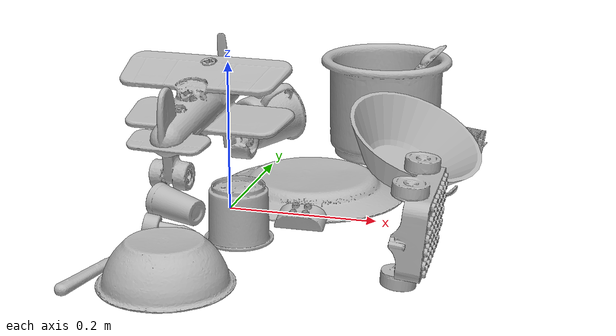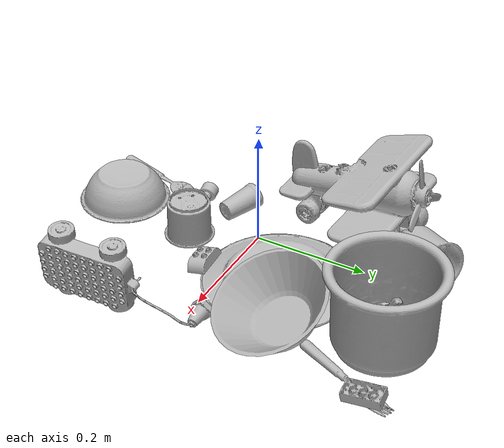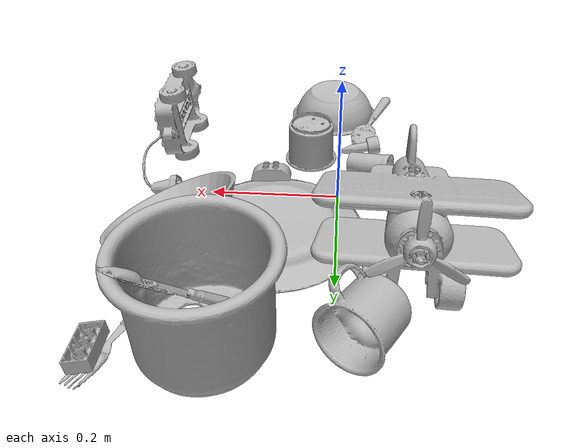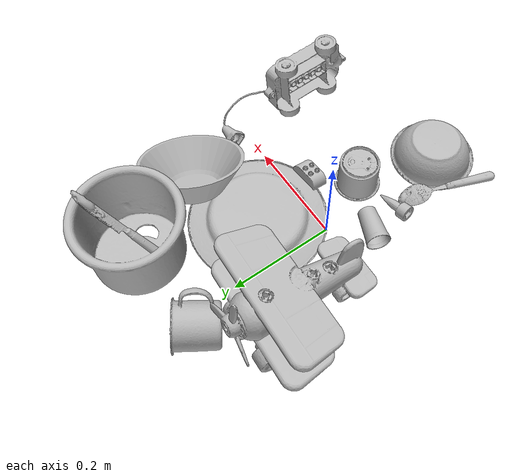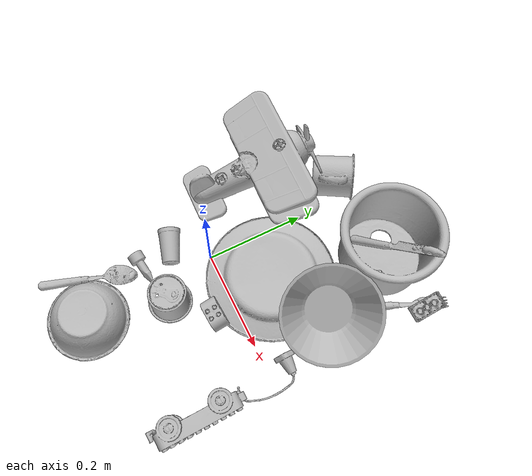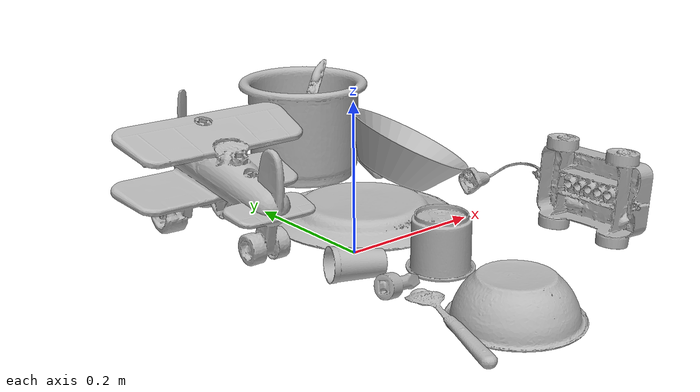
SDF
<sdf version="1.4">
  <world name="default">
    <light name="light1" type="point">
      <pose>0 0 1 0 0 0</pose>
      <diffuse>3 3 3 1</diffuse>
      <specular>3 3 3 1</specular>
    </light>
    <light name="light2" type="point">
      <pose>0 0.5 2 0 0 0</pose>
      <diffuse>1 1 1 1</diffuse>
      <specular>1 1 1 1</specular>
    </light>
    <light name="light3" type="point">
      <pose>0 0.5 2 0 0 0</pose>
      <diffuse>3 3 3 1</diffuse>
      <specular>3 3 3 1</specular>
    </light>
    <scene>
      <ambient>0.7 0.7 0.7</ambient>
    </scene>
    <model name="plate1">
      <link name="link_plate1">
        <collision name="default">
          <geometry>
            <mesh>
              <uri>model://plate/collision_meshes/collision.obj</uri>
              <scale>1.0 1.0 1.0</scale>
            </mesh>
          </geometry>
          <surface>
            <friction>
              <ode>
                <mu>0.5</mu>
                <mu2>0.5</mu2>
              </ode>
            </friction>
          <contact>
        <ode>
            <max_vel>0</max_vel>
            <min_depth>0.0001</min_depth>
            <kp>1e8</kp>
        </ode>
    </contact></surface>
        </collision>
        <visual name="default">
          <geometry>
            <mesh>
              <uri>model://plate/visual_meshes/visual.dae</uri>
              <scale>1.0 1.0 1.0</scale>
            </mesh>
          </geometry>
        </visual>
        <inertial>
          <mass>0.22833794355392456</mass>
          <pose>-0.000604461005423218 0.00027825840516015887 -0.0010561991948634386 0.0022188074693480237 -0.003225470002654536 0.4526028307495764</pose>
          <inertia>
            <ixx>0.0010681693</ixx>
            <iyy>0.0010579526</iyy>
            <izz>0.0020891798</izz>
            <ixy>0</ixy>
            <ixz>0</ixz>
            <iyz>0</iyz>
          </inertia>
        </inertial>
      </link>
      <pose>0.09066520631313324 0.0900031253695488 0.013448681682348251 3.1414220299414635 -0.003164424271083205 0.5305421033777145</pose>
    </model>
    <model name="cup1">
      <link name="link_cup1">
        <collision name="default">
          <geometry>
            <mesh>
              <uri>model://i_cups/collision_meshes/collision.obj</uri>
              <scale>2.0 2.0 2.0</scale>
            </mesh>
          </geometry>
          <surface>
            <friction>
              <ode>
                <mu>0.5</mu>
                <mu2>0.5</mu2>
              </ode>
            </friction>
          <contact>
        <ode>
            <max_vel>0</max_vel>
            <min_depth>0.0001</min_depth>
            <kp>1e8</kp>
        </ode>
    </contact></surface>
        </collision>
        <visual name="default">
          <geometry>
            <mesh>
              <uri>model://i_cups/visual_meshes/visual.dae</uri>
              <scale>2.0 2.0 2.0</scale>
            </mesh>
          </geometry>
        </visual>
        <inertial>
          <mass>0.4681873917579651</mass>
          <pose>0.00022480281768366694 0.00033594679553061724 -0.001715805265121162 -0.028982833374769763 -0.039873302367341296 -0.3459182567321849</pose>
          <inertia>
            <ixx>0.0025928493</ixx>
            <iyy>0.0026156942</iyy>
            <izz>0.0028979292</izz>
            <ixy>0</ixy>
            <ixz>0</ixz>
            <iyz>0</iyz>
          </inertia>
        </inertial>
      </link>
      <pose>0.1492079496383667 0.30291181802749634 0.07555001974105835 0.002103400250610348 -0.0062149342438636256 2.0979642698935894</pose>
    </model>
    <model name="silverware1">
      <link name="link_silverware1">
        <collision name="default">
          <geometry>
            <mesh>
              <uri>model://fork/collision_meshes/collision.obj</uri>
              <scale>1.0 1.0 1.0</scale>
            </mesh>
          </geometry>
          <surface>
            <friction>
              <ode>
                <mu>0.5</mu>
                <mu2>0.5</mu2>
              </ode>
            </friction>
          <contact>
        <ode>
            <max_vel>0</max_vel>
            <min_depth>0.0001</min_depth>
            <kp>1e8</kp>
        </ode>
    </contact></surface>
        </collision>
        <visual name="default">
          <geometry>
            <mesh>
              <uri>model://fork/visual_meshes/visual.dae</uri>
              <scale>1.0 1.0 1.0</scale>
            </mesh>
          </geometry>
        </visual>
        <inertial>
          <mass>0.027571624144911766</mass>
          <pose>-0.02957003377377987 0.00046588233090005815 0.00032188609475269914 -0.013550958023284024 -0.010977835737993834 0.014453901364285019</pose>
          <inertia>
            <ixx>9.665413e-07</ixx>
            <iyy>7.198156e-05</iyy>
            <izz>7.24139e-05</izz>
            <ixy>0</ixy>
            <ixz>0</ixz>
            <iyz>0</iyz>
          </inertia>
        </inertial>
      </link>
      <pose>0.25192776322364807 0.2866322994232178 0.00522964121773839 0.010306250449879659 0.05082859112415028 1.1767912050793603</pose>
    </model>
    <model name="silverware2">
      <link name="link_silverware2">
        <collision name="default">
          <geometry>
            <mesh>
              <uri>model://spoon/collision_meshes/collision.obj</uri>
              <scale>1.0 1.0 1.0</scale>
            </mesh>
          </geometry>
          <surface>
            <friction>
              <ode>
                <mu>0.5</mu>
                <mu2>0.5</mu2>
              </ode>
            </friction>
          <contact>
        <ode>
            <max_vel>0</max_vel>
            <min_depth>0.0001</min_depth>
            <kp>1e8</kp>
        </ode>
    </contact></surface>
        </collision>
        <visual name="default">
          <geometry>
            <mesh>
              <uri>model://spoon/visual_meshes/visual.dae</uri>
              <scale>1.0 1.0 1.0</scale>
            </mesh>
          </geometry>
        </visual>
        <inertial>
          <mass>0.026229728013277054</mass>
          <pose>-0.005526318680495024 -0.001603417913429439 -0.0007271656068041921 0.03521671072465583 -0.039065837568760656 0.006150610113583586</pose>
          <inertia>
            <ixx>1.4589405e-06</ixx>
            <iyy>9.980327e-05</iyy>
            <izz>0.00010052276</izz>
            <ixy>0</ixy>
            <ixz>0</ixz>
            <iyz>0</iyz>
          </inertia>
        </inertial>
      </link>
      <pose>-0.060862794518470764 -0.2391916811466217 0.010196601040661335 3.0855067699565053 -0.06127502128071971 1.2587394110958292</pose>
    </model>
    <model name="silverware3">
      <link name="link_silverware3">
        <collision name="default">
          <geometry>
            <mesh>
              <uri>model://knife/collision_meshes/collision.obj</uri>
              <scale>1.0 1.0 1.0</scale>
            </mesh>
          </geometry>
          <surface>
            <friction>
              <ode>
                <mu>0.5</mu>
                <mu2>0.5</mu2>
              </ode>
            </friction>
          <contact>
        <ode>
            <max_vel>0</max_vel>
            <min_depth>0.0001</min_depth>
            <kp>1e8</kp>
        </ode>
    </contact></surface>
        </collision>
        <visual name="default">
          <geometry>
            <mesh>
              <uri>model://knife/visual_meshes/visual.dae</uri>
              <scale>1.0 1.0 1.0</scale>
            </mesh>
          </geometry>
        </visual>
        <inertial>
          <mass>0.02346421591937542</mass>
          <pose>-0.02378525584936142 0.0015275125624611974 5.062017953605391e-05 0.07305400797241687 0.017248417900584085 -0.007409820985288758</pose>
          <inertia>
            <ixx>6.6600956e-07</ixx>
            <iyy>9.0145724e-05</iyy>
            <izz>9.036023e-05</izz>
            <ixy>0</ixy>
            <ixz>0</ixz>
            <iyz>0</iyz>
          </inertia>
        </inertial>
      </link>
      <pose>0.1608782559633255 0.3119357228279114 0.09198188036680222 -3.049318244654359 -0.7190514369063744 0.5722957258160367</pose>
    </model>
    <model name="cup3">
      <link name="link_cup3">
        <collision name="default">
          <geometry>
            <mesh>
              <uri>model://g_cups/collision_meshes/collision.obj</uri>
              <scale>1.0 1.0 1.0</scale>
            </mesh>
          </geometry>
          <surface>
            <friction>
              <ode>
                <mu>0.5</mu>
                <mu2>0.5</mu2>
              </ode>
            </friction>
          <contact>
        <ode>
            <max_vel>0</max_vel>
            <min_depth>0.0001</min_depth>
            <kp>1e8</kp>
        </ode>
    </contact></surface>
        </collision>
        <visual name="default">
          <geometry>
            <mesh>
              <uri>model://g_cups/visual_meshes/visual.dae</uri>
              <scale>1.0 1.0 1.0</scale>
            </mesh>
          </geometry>
        </visual>
        <inertial>
          <mass>0.061065707355737686</mass>
          <pose>-0.0007946277037262917 -4.2064726585522294e-05 -0.002132938476279378 -0.21381528234109023 -0.31410608856426947 0.31118675593786127</pose>
          <inertia>
            <ixx>7.1277376e-05</ixx>
            <iyy>7.10349e-05</iyy>
            <izz>7.383109e-05</izz>
            <ixy>0</ixy>
            <ixz>0</ixz>
            <iyz>0</iyz>
          </inertia>
        </inertial>
      </link>
      <pose>0.048192042857408524 -0.10960168391466141 0.03711601346731186 3.1415926189012104 -8.311729887556487e-08 2.485915679381262</pose>
    </model>
    <model name="cup4">
      <link name="link_cup4">
        <collision name="default">
          <geometry>
            <mesh>
              <uri>model://mug/collision_meshes/collision.obj</uri>
              <scale>1.0 1.0 1.0</scale>
            </mesh>
          </geometry>
          <surface>
            <friction>
              <ode>
                <mu>0.5</mu>
                <mu2>0.5</mu2>
              </ode>
            </friction>
          <contact>
        <ode>
            <max_vel>0</max_vel>
            <min_depth>0.0001</min_depth>
            <kp>1e8</kp>
        </ode>
    </contact></surface>
        </collision>
        <visual name="default">
          <geometry>
            <mesh>
              <uri>model://mug/visual_meshes/visual.dae</uri>
              <scale>1.0 1.0 1.0</scale>
            </mesh>
          </geometry>
        </visual>
        <inertial>
          <mass>0.23807048797607422</mass>
          <pose>0.009571674279868603 0.0008143257582560182 -0.010947330854833126 -0.1298314387661624 0.08737745525079747 0.05507303490292968</pose>
          <inertia>
            <ixx>0.00023648023</ixx>
            <iyy>0.0002641344</iyy>
            <izz>0.00030547503</izz>
            <ixy>0</ixy>
            <ixz>0</ixz>
            <iyz>0</iyz>
          </inertia>
        </inertial>
      </link>
      <pose>-0.03049892745912075 0.2894350290298462 0.05317840725183487 1.4080694643341845 0.9911332027014434 2.453572474312153</pose>
    </model>
    <model name="cup5">
      <link name="link_cup5">
        <collision name="default">
          <geometry>
            <mesh>
              <uri>model://cup_small/collision_meshes/collision.obj</uri>
              <scale>1.0 1.0 1.0</scale>
            </mesh>
          </geometry>
          <surface>
            <friction>
              <ode>
                <mu>0.5</mu>
                <mu2>0.5</mu2>
              </ode>
            </friction>
          <contact>
        <ode>
            <max_vel>0</max_vel>
            <min_depth>0.0001</min_depth>
            <kp>1e8</kp>
        </ode>
    </contact></surface>
        </collision>
        <visual name="default">
          <geometry>
            <mesh>
              <uri>model://cup_small/visual_meshes/visual.dae</uri>
              <scale>1.0 1.0 1.0</scale>
            </mesh>
          </geometry>
        </visual>
        <inertial>
          <mass>0.034257128834724426</mass>
          <pose>0.00010482469951966777 -0.00033778377110138535 -0.01074282731860876 -0.011493012610900502 -0.015280351102743797 -0.5058271067899499</pose>
          <inertia>
            <ixx>2.0170073e-05</ixx>
            <iyy>2.0274121e-05</iyy>
            <izz>9.106847e-06</izz>
            <ixy>0</ixy>
            <ixz>0</ixz>
            <iyz>0</iyz>
          </inertia>
        </inertial>
      </link>
      <pose>-0.051147013902664185 -0.06526155769824982 0.02008192241191864 1.4143669433651354 0.9819604708391659 -2.0684971173037</pose>
    </model>
    <model name="bowl1">
      <link name="link_bowl1">
        <collision name="default">
          <geometry>
            <mesh>
              <uri>model://bowl/collision_meshes/collision.obj</uri>
              <scale>1.0 1.0 1.0</scale>
            </mesh>
          </geometry>
          <surface>
            <friction>
              <ode>
                <mu>0.5</mu>
                <mu2>0.5</mu2>
              </ode>
            </friction>
          <contact>
        <ode>
            <max_vel>0</max_vel>
            <min_depth>0.0001</min_depth>
            <kp>1e8</kp>
        </ode>
    </contact></surface>
        </collision>
        <visual name="default">
          <geometry>
            <mesh>
              <uri>model://bowl/visual_meshes/visual.dae</uri>
              <scale>1.0 1.0 1.0</scale>
            </mesh>
          </geometry>
        </visual>
        <inertial>
          <mass>0.06465846300125122</mass>
          <pose>0.0002044529392151162 -0.0010302059818059206 -0.0008042643894441426 -0.015764115524798613 0.014546769889283702 0.7140385686011532</pose>
          <inertia>
            <ixx>0.00014852564</ixx>
            <iyy>0.000145207</iyy>
            <izz>0.00024987117</izz>
            <ixy>0</ixy>
            <ixz>0</ixz>
            <iyz>0</iyz>
          </inertia>
        </inertial>
      </link>
      <pose>0.011589148081839085 -0.26771122217178345 0.027247317135334015 -3.1327275666769387 0.0006729669117114852 -2.8966530224980866</pose>
    </model>
    <model name="bowl2">
      <link name="link_bowl2">
        <collision name="default">
          <geometry>
            <mesh>
              <uri>model://bowl_a/collision_meshes/collision.obj</uri>
              <scale>1.0 1.0 1.0</scale>
            </mesh>
          </geometry>
          <surface>
            <friction>
              <ode>
                <mu>0.5</mu>
                <mu2>0.5</mu2>
              </ode>
            </friction>
          <contact>
        <ode>
            <max_vel>0</max_vel>
            <min_depth>0.0001</min_depth>
            <kp>1e8</kp>
        </ode>
    </contact></surface>
        </collision>
        <visual name="default">
          <geometry>
            <mesh>
              <uri>model://bowl_a/visual_meshes/visual.dae</uri>
              <scale>1.0 1.0 1.0</scale>
            </mesh>
          </geometry>
        </visual>
        <inertial>
          <mass>0.4949932396411896</mass>
          <pose>0.00027867621975019574 4.730939326691441e-05 -0.0013765293406322598 -0.0009805412802391578 -0.001093824733375575 -0.19123603072484788</pose>
          <inertia>
            <ixx>0.0014092687</ixx>
            <iyy>0.0014179207</iyy>
            <izz>0.0025064375</izz>
            <ixy>0</ixy>
            <ixz>0</ixz>
            <iyz>0</iyz>
          </inertia>
        </inertial>
      </link>
      <pose>0.21353767812252045 0.15005241334438324 0.05188160017132759 0.35113134231339427 0.31152343381051384 0.36513533168495116</pose>
    </model>
    <model name="toy1">
      <link name="link_toy1">
        <collision name="default">
          <geometry>
            <mesh>
              <uri>model://a_toy_airplane/collision_meshes/collision.obj</uri>
              <scale>1.0 1.0 1.0</scale>
            </mesh>
          </geometry>
          <surface>
            <friction>
              <ode>
                <mu>0.5</mu>
                <mu2>0.5</mu2>
              </ode>
            </friction>
          <contact>
        <ode>
            <max_vel>0</max_vel>
            <min_depth>0.0001</min_depth>
            <kp>1e8</kp>
        </ode>
    </contact></surface>
        </collision>
        <visual name="default">
          <geometry>
            <mesh>
              <uri>model://a_toy_airplane/visual_meshes/visual.dae</uri>
              <scale>1.0 1.0 1.0</scale>
            </mesh>
          </geometry>
        </visual>
        <inertial>
          <mass>1.5726872682571411</mass>
          <pose>0.025165090337395668 -0.003707318101078272 -0.0011962441494688392 -0.012016975653996446 -0.14663502644886817 0.00414906395026872</pose>
          <inertia>
            <ixx>0.0057111816</ixx>
            <iyy>0.008322349</iyy>
            <izz>0.009744448</izz>
            <ixy>0</ixy>
            <ixz>0</ixz>
            <iyz>0</iyz>
          </inertia>
        </inertial>
      </link>
      <pose>-0.10216360539197922 0.1391499936580658 0.09235986322164536 8.470147123820183e-06 -3.0712042753206994e-05 1.528348554390065</pose>
    </model>
    <model name="toy2">
      <link name="link_toy2">
        <collision name="default">
          <geometry>
            <mesh>
              <uri>model://g_lego_duplo/collision_meshes/collision.obj</uri>
              <scale>1.0 1.0 1.0</scale>
            </mesh>
          </geometry>
          <surface>
            <friction>
              <ode>
                <mu>0.5</mu>
                <mu2>0.5</mu2>
              </ode>
            </friction>
          <contact>
        <ode>
            <max_vel>0</max_vel>
            <min_depth>0.0001</min_depth>
            <kp>1e8</kp>
        </ode>
    </contact></surface>
        </collision>
        <visual name="default">
          <geometry>
            <mesh>
              <uri>model://g_lego_duplo/visual_meshes/visual.dae</uri>
              <scale>1.0 1.0 1.0</scale>
            </mesh>
          </geometry>
        </visual>
        <inertial>
          <mass>0.27239978313446045</mass>
          <pose>-0.05004768446087837 0.0017554647056385875 0.003880675882101059 0.010962999716487856 0.03810827607734427 -0.09653019061870628</pose>
          <inertia>
            <ixx>0.00039471043</ixx>
            <iyy>0.0011933373</iyy>
            <izz>0.0014929089</izz>
            <ixy>0</ixy>
            <ixz>0</ixz>
            <iyz>0</iyz>
          </inertia>
        </inertial>
      </link>
      <pose>0.2780819535255432 -0.09326273947954178 0.05949980393052101 1.6694750470908966 0.007948080952089681 1.6017381991688708</pose>
    </model>
    <model name="toy3">
      <link name="link_toy3">
        <collision name="default">
          <geometry>
            <mesh>
              <uri>model://e_toy_airplane/collision_meshes/collision.obj</uri>
              <scale>1.0 1.0 1.0</scale>
            </mesh>
          </geometry>
          <surface>
            <friction>
              <ode>
                <mu>0.5</mu>
                <mu2>0.5</mu2>
              </ode>
            </friction>
          <contact>
        <ode>
            <max_vel>0</max_vel>
            <min_depth>0.0001</min_depth>
            <kp>1e8</kp>
        </ode>
    </contact></surface>
        </collision>
        <visual name="default">
          <geometry>
            <mesh>
              <uri>model://e_toy_airplane/visual_meshes/visual.dae</uri>
              <scale>1.0 1.0 1.0</scale>
            </mesh>
          </geometry>
        </visual>
        <inertial>
          <mass>0.02767481654882431</mass>
          <pose>0.00011740472837118432 -2.2482989152194932e-05 -0.011187202297151089 0.005518508312800945 0.009228282632666047 0.1504154330375105</pose>
          <inertia>
            <ixx>8.446671e-06</ixx>
            <iyy>8.360266e-06</iyy>
            <izz>2.5385568e-06</izz>
            <ixy>0</ixy>
            <ixz>0</ixz>
            <iyz>0</iyz>
          </inertia>
        </inertial>
      </link>
      <pose>-0.03649016469717026 -0.13069327175617218 0.012219080701470375 -1.788248962472171 -0.6009315286635685 -1.2925669861501772</pose>
    </model>
    <model name="toy4">
      <link name="link_toy4">
        <collision name="default">
          <geometry>
            <mesh>
              <uri>model://c_lego_duplo/collision_meshes/collision.obj</uri>
              <scale>1.0 1.0 1.0</scale>
            </mesh>
          </geometry>
          <surface>
            <friction>
              <ode>
                <mu>0.5</mu>
                <mu2>0.5</mu2>
              </ode>
            </friction>
          <contact>
        <ode>
            <max_vel>0</max_vel>
            <min_depth>0.0001</min_depth>
            <kp>1e8</kp>
        </ode>
    </contact></surface>
        </collision>
        <visual name="default">
          <geometry>
            <mesh>
              <uri>model://c_lego_duplo/visual_meshes/visual.dae</uri>
              <scale>1.0 1.0 1.0</scale>
            </mesh>
          </geometry>
        </visual>
        <inertial>
          <mass>0.027596205472946167</mass>
          <pose>0.0003164597146678716 0.00019464619981590658 0.0010453155264258385 -0.011520800817134696 0.005900104067849837 0.03110033537421094</pose>
          <inertia>
            <ixx>1.0619538e-05</ixx>
            <iyy>3.3922634e-06</iyy>
            <izz>1.2410018e-05</izz>
            <ixy>0</ixy>
            <ixz>0</ixz>
            <iyz>0</iyz>
          </inertia>
        </inertial>
      </link>
      <pose>0.2808968722820282 0.3320293128490448 0.016338475048542023 3.0280496172520692 -0.15643185852879762 -3.0439953797265256</pose>
    </model>
    <model name="toy5">
      <link name="link_toy5">
        <collision name="default">
          <geometry>
            <mesh>
              <uri>model://a_lego_duplo/collision_meshes/collision.obj</uri>
              <scale>1.0 1.0 1.0</scale>
            </mesh>
          </geometry>
          <surface>
            <friction>
              <ode>
                <mu>0.5</mu>
                <mu2>0.5</mu2>
              </ode>
            </friction>
          <contact>
        <ode>
            <max_vel>0</max_vel>
            <min_depth>0.0001</min_depth>
            <kp>1e8</kp>
        </ode>
    </contact></surface>
        </collision>
        <visual name="default">
          <geometry>
            <mesh>
              <uri>model://a_lego_duplo/visual_meshes/visual.dae</uri>
              <scale>1.0 1.0 1.0</scale>
            </mesh>
          </geometry>
        </visual>
        <inertial>
          <mass>0.011767913587391376</mass>
          <pose>-0.00011337622709106654 0.00018517576972953975 0.0003692608152050525 -0.0141170192796563 -0.00012565406274383194 6.140908251533293e-05</pose>
          <inertia>
            <ixx>1.5087408e-06</ixx>
            <iyy>3.3799095e-06</iyy>
            <izz>4.186769e-06</izz>
            <ixy>0</ixy>
            <ixz>0</ixz>
            <iyz>0</iyz>
          </inertia>
        </inertial>
      </link>
      <pose>0.1102517768740654 -0.04443177953362465 0.0154107129201293 -0.21167824006449903 -0.021878725297068382 -3.076181053756002</pose>
    </model>
  <physics type="ode">
      <max_contacts>50</max_contacts>
      <ode>
        <solver>
          <type>quick</type>
          <iters>75</iters>
        </solver>
        <constraints>
          <contact_max_correcting_vel>0</contact_max_correcting_vel>
          <contact_surface_layer>0</contact_surface_layer>
        </constraints>
      </ode>
    </physics></world>
</sdf>
